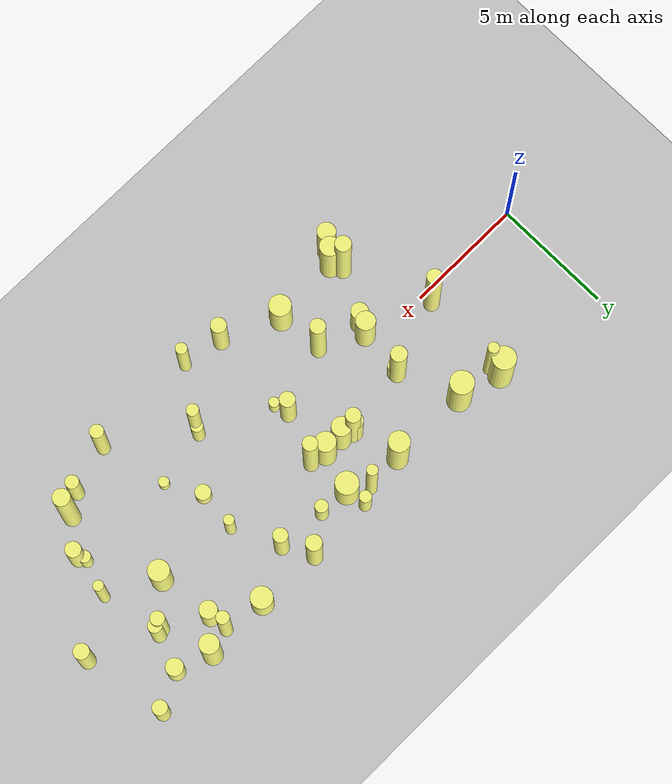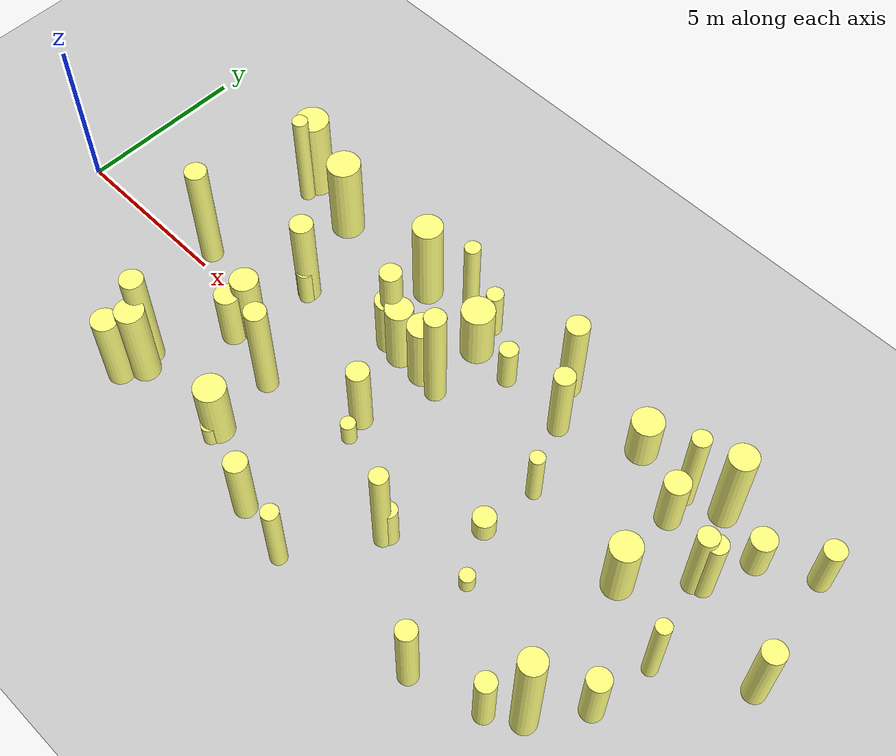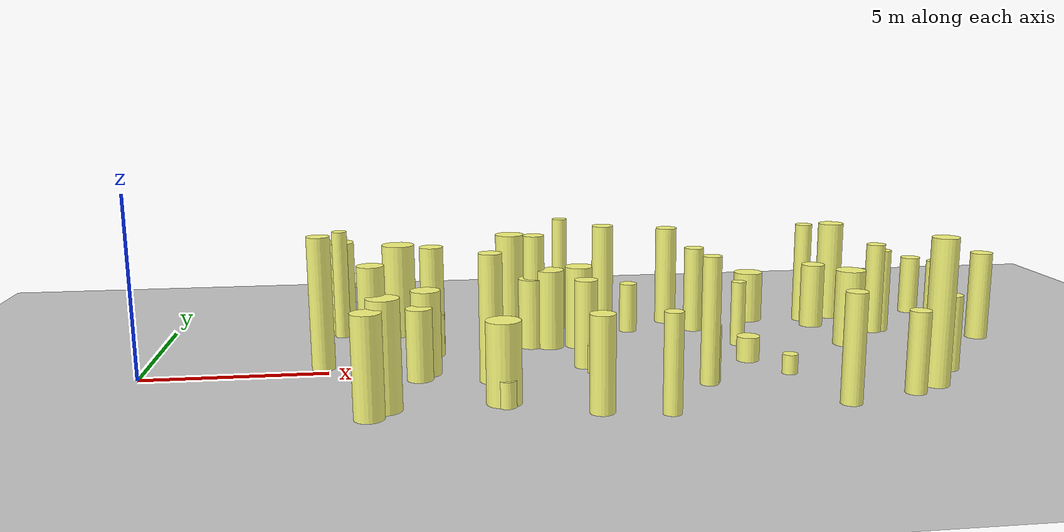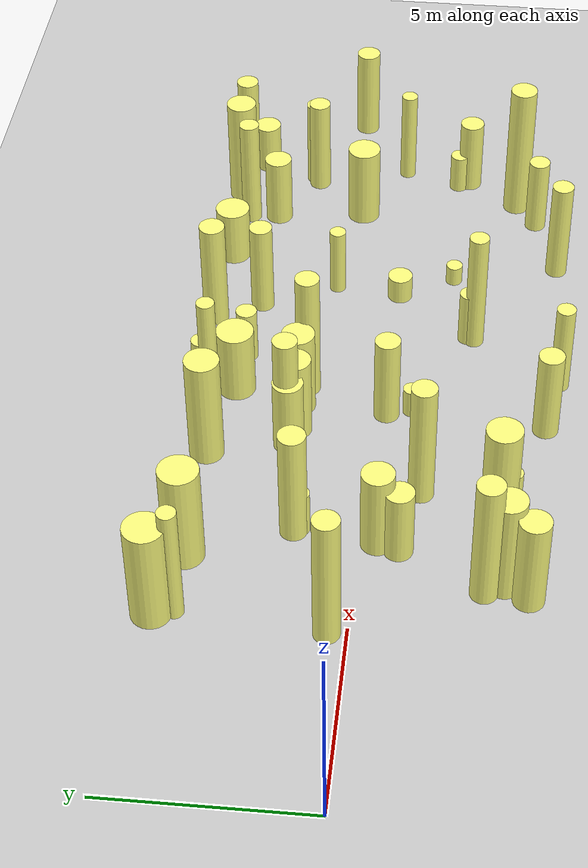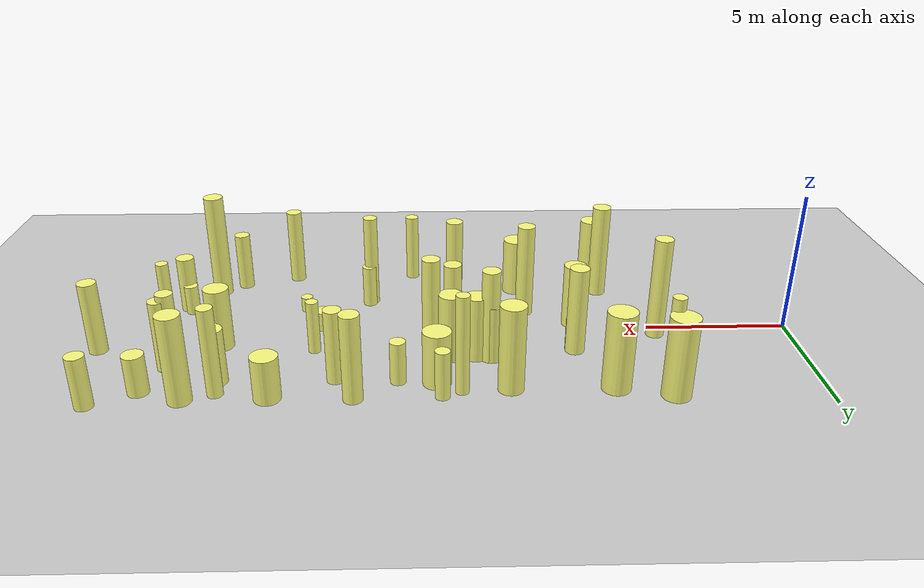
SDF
<sdf version="1.4">
 <world name="default">
  <include><uri>model://ground_plane</uri></include>
  <include><uri>model://sun</uri></include>
  <model name="forest">
   <static>true</static>
   <link name="cylinder1">
    <pose>15.326810881068745 4.44815020159648 1.5245089961670204 0 0 0</pose>
    <visual name="visual">
     <geometry>
      <cylinder><radius>0.32884276525468004</radius><length>3.049017992334041</length></cylinder>
     </geometry>
     <material>
      <ambient>0.6 0.6 0.6 1</ambient>
      <diffuse>1 1 0.5 1</diffuse>
      <specular>0 0 0</specular>
      <emissive>0 0 0 1</emissive>
     </material>
    </visual>
    <collision name="collision">
     <geometry>
      <cylinder><radius>0.32884276525468004</radius><length>3.049017992334041</length></cylinder>
     </geometry>
     <max_contacts>0</max_contacts>
    </collision>
   </link>
   <link name="cylinder12">
    <pose>11.851252865154429 4.0846548338123 1.7340153190742436 0 0 0</pose>
    <visual name="visual">
     <geometry><cylinder><radius>0.225802921579659</radius><length>3.468030638148487</length></cylinder></geometry>
     <material>
      <ambient>0.6 0.6 0.6 1</ambient>
      <diffuse>1 1 0.5 1</diffuse>
      <specular>0 0 0</specular>
      <emissive>0 0 0 1</emissive>
     </material>
    </visual>
    <collision name="collision">
     <geometry><cylinder><radius>0.225802921579659</radius><length>3.468030638148487</length></cylinder></geometry>
     <max_contacts>0</max_contacts>
    </collision>
   </link>
   <link name="cylinder13">
    <pose>9.528915182945973 -3.262580325282216 1.0667924906563833 0 0 0</pose>
    <visual name="visual">
     <geometry>
      <cylinder><radius>0.45164004948687075</radius><length>2.1335849813127665</length></cylinder>
     </geometry>
     <material>
      <ambient>0.6 0.6 0.6 1</ambient>
      <diffuse>1 1 0.5 1</diffuse>
      <specular>0 0 0</specular>
      <emissive>0 0 0 1</emissive>
     </material>
    </visual>
    <collision name="collision">
     <geometry>
      <cylinder><radius>0.45164004948687075</radius><length>2.1335849813127665</length></cylinder>
     </geometry>
     <max_contacts>0</max_contacts>
    </collision>
   </link>
   <link name="cylinder15">
    <pose>20.789859159138125 4.408615186613762 1.540305498436152 0 0 0</pose>
    <visual name="visual">
     <geometry>
      <cylinder><radius>0.3992713100745151</radius><length>3.080610996872304</length></cylinder>
     </geometry>
     <material>
      <ambient>0.6 0.6 0.6 1</ambient>
      <diffuse>1 1 0.5 1</diffuse>
      <specular>0 0 0</specular>
      <emissive>0 0 0 1</emissive>
     </material>
    </visual>
    <collision name="collision">
     <geometry>
      <cylinder><radius>0.3992713100745151</radius><length>3.080610996872304</length></cylinder>
     </geometry>
     <max_contacts>0</max_contacts>
    </collision>
   </link>
   <link name="cylinder17">
    <pose>22.17317977526671 -0.17076089515016335 1.340687301200209 0 0 0</pose>
    <visual name="visual">
     <geometry>
      <cylinder><radius>0.21578449378087355</radius><length>2.681374602400418</length></cylinder>
     </geometry>
     <material>
      <ambient>0.6 0.6 0.6 1</ambient>
      <diffuse>1 1 0.5 1</diffuse>
      <specular>0 0 0</specular>
      <emissive>0 0 0 1</emissive>
     </material>
    </visual>
    <collision name="collision">
     <geometry>
      <cylinder><radius>0.21578449378087355</radius><length>2.681374602400418</length></cylinder>
     </geometry>
     <max_contacts>0</max_contacts>
    </collision>
   </link>
   <link name="cylinder18">
    <pose>10.749598188778428 1.991703804756165 1.025701142250085 0 0 0</pose>
    <visual name="visual">
     <geometry><cylinder><radius>0.3834756503450859</radius><length>2.05140228450017</length></cylinder></geometry>
     <material>
      <ambient>0.6 0.6 0.6 1</ambient>
      <diffuse>1 1 0.5 1</diffuse>
      <specular>0 0 0</specular>
      <emissive>0 0 0 1</emissive>
     </material>
    </visual>
    <collision name="collision">
     <geometry><cylinder><radius>0.3834756503450859</radius><length>2.05140228450017</length></cylinder></geometry>
     <max_contacts>0</max_contacts>
    </collision>
   </link>
   <link name="cylinder22">
    <pose>21.6921501270242 -1.6663580762201633 0.5468895035778689 0 0 0</pose>
    <visual name="visual">
     <geometry>
      <cylinder><radius>0.24838409049166843</radius><length>1.0937790071557378</length></cylinder>
     </geometry>
     <material>
      <ambient>0.6 0.6 0.6 1</ambient>
      <diffuse>1 1 0.5 1</diffuse>
      <specular>0 0 0</specular>
      <emissive>0 0 0 1</emissive>
     </material>
    </visual>
    <collision name="collision">
     <geometry>
      <cylinder><radius>0.24838409049166843</radius><length>1.0937790071557378</length></cylinder>
     </geometry>
     <max_contacts>0</max_contacts>
    </collision>
   </link>
   <link name="cylinder23">
    <pose>20.137798298450257 0.9372512442738916 1.1237016619375413 0 0 0</pose>
    <visual name="visual">
     <geometry>
      <cylinder><radius>0.4350848166733843</radius><length>2.2474033238750826</length></cylinder>
     </geometry>
     <material>
      <ambient>0.6 0.6 0.6 1</ambient>
      <diffuse>1 1 0.5 1</diffuse>
      <specular>0 0 0</specular>
      <emissive>0 0 0 1</emissive>
     </material>
    </visual>
    <collision name="collision">
     <geometry>
      <cylinder><radius>0.4350848166733843</radius><length>2.2474033238750826</length></cylinder>
     </geometry>
     <max_contacts>0</max_contacts>
    </collision>
   </link>
   <link name="cylinder26">
    <pose>19.833739490549426 3.294432998006373 0.9844088126925716 0 0 0</pose>
    <visual name="visual">
     <geometry>
      <cylinder><radius>0.3623249942571851</radius><length>1.9688176253851433</length></cylinder>
     </geometry>
     <material>
      <ambient>0.6 0.6 0.6 1</ambient>
      <diffuse>1 1 0.5 1</diffuse>
      <specular>0 0 0</specular>
      <emissive>0 0 0 1</emissive>
     </material>
    </visual>
    <collision name="collision">
     <geometry>
      <cylinder><radius>0.3623249942571851</radius><length>1.9688176253851433</length></cylinder>
     </geometry>
     <max_contacts>0</max_contacts>
    </collision>
   </link>
   <link name="cylinder28">
    <pose>13.511106060946105 -4.632045625972444 1.276704302045779 0 0 0</pose>
    <visual name="visual">
     <geometry>
      <cylinder><radius>0.24020327871995664</radius><length>2.553408604091558</length></cylinder>
     </geometry>
     <material>
      <ambient>0.6 0.6 0.6 1</ambient>
      <diffuse>1 1 0.5 1</diffuse>
      <specular>0 0 0</specular>
      <emissive>0 0 0 1</emissive>
     </material>
    </visual>
    <collision name="collision">
     <geometry>
      <cylinder><radius>0.24020327871995664</radius><length>2.553408604091558</length></cylinder>
     </geometry>
     <max_contacts>0</max_contacts>
    </collision>
   </link>
   <link name="cylinder29">
    <pose>20.902014358298864 -3.3283581596672986 1.9682573430151837 0 0 0</pose>
    <visual name="visual">
     <geometry>
      <cylinder><radius>0.35390016411605674</radius><length>3.9365146860303675</length></cylinder>
     </geometry>
     <material>
      <ambient>0.6 0.6 0.6 1</ambient>
      <diffuse>1 1 0.5 1</diffuse>
      <specular>0 0 0</specular>
      <emissive>0 0 0 1</emissive>
     </material>
    </visual>
    <collision name="collision">
     <geometry>
      <cylinder><radius>0.35390016411605674</radius><length>3.9365146860303675</length></cylinder>
     </geometry>
     <max_contacts>0</max_contacts>
    </collision>
   </link>
   <link name="cylinder33">
    <pose>10.277843832452142 3.9662285758313267 1.5198597949279122 0 0 0</pose>
    <visual name="visual">
     <geometry>
      <cylinder><radius>0.43222622895694485</radius><length>3.0397195898558245</length></cylinder>
     </geometry>
     <material>
      <ambient>0.6 0.6 0.6 1</ambient>
      <diffuse>1 1 0.5 1</diffuse>
      <specular>0 0 0</specular>
      <emissive>0 0 0 1</emissive>
     </material>
    </visual>
    <collision name="collision">
     <geometry>
      <cylinder><radius>0.43222622895694485</radius><length>3.0397195898558245</length></cylinder>
     </geometry>
     <max_contacts>0</max_contacts>
    </collision>
   </link>
   <link name="cylinder34">
    <pose>6.341370451103096 -2.992066850662254 1.7665536685939367 0 0 0</pose>
    <visual name="visual">
     <geometry>
      <cylinder><radius>0.3342498121226667</radius><length>3.5331073371878734</length></cylinder>
     </geometry>
     <material>
      <ambient>0.6 0.6 0.6 1</ambient>
      <diffuse>1 1 0.5 1</diffuse>
      <specular>0 0 0</specular>
      <emissive>0 0 0 1</emissive>
     </material>
    </visual>
    <collision name="collision">
     <geometry>
      <cylinder><radius>0.3342498121226667</radius><length>3.5331073371878734</length></cylinder>
     </geometry>
     <max_contacts>0</max_contacts>
    </collision>
   </link>
   <link name="cylinder35">
    <pose>12.031115373614448 -0.32621599096671083 1.2311138491603326 0 0 0</pose>
    <visual name="visual">
     <geometry>
      <cylinder><radius>0.32083398046830275</radius><length>2.4622276983206652</length></cylinder>
     </geometry>
     <material>
      <ambient>0.6 0.6 0.6 1</ambient>
      <diffuse>1 1 0.5 1</diffuse>
      <specular>0 0 0</specular>
      <emissive>0 0 0 1</emissive>
     </material>
    </visual>
    <collision name="collision">
     <geometry>
      <cylinder><radius>0.32083398046830275</radius><length>2.4622276983206652</length></cylinder>
     </geometry>
     <max_contacts>0</max_contacts>
    </collision>
   </link>
   <link name="cylinder37">
    <pose>23.703867928985538 4.6543589916086265 0.9164790352000004 0 0 0</pose>
    <visual name="visual">
     <geometry>
      <cylinder><radius>0.3063984760092656</radius><length>1.8329580704000008</length></cylinder>
     </geometry>
     <material>
      <ambient>0.6 0.6 0.6 1</ambient>
      <diffuse>1 1 0.5 1</diffuse>
      <specular>0 0 0</specular>
      <emissive>0 0 0 1</emissive>
     </material>
    </visual>
    <collision name="collision">
     <geometry>
      <cylinder><radius>0.3063984760092656</radius><length>1.8329580704000008</length></cylinder>
     </geometry>
     <max_contacts>0</max_contacts>
    </collision>
   </link>
   <link name="cylinder39">
    <pose>19.744685019783738 4.060041109546567 1.5626195724777552 0 0 0</pose>
    <visual name="visual">
     <geometry>
      <cylinder><radius>0.2643367503565982</radius><length>3.1252391449555104</length></cylinder>
     </geometry>
     <material>
      <ambient>0.6 0.6 0.6 1</ambient>
      <diffuse>1 1 0.5 1</diffuse>
      <specular>0 0 0</specular>
      <emissive>0 0 0 1</emissive>
     </material>
    </visual>
    <collision name="collision">
     <geometry>
      <cylinder><radius>0.2643367503565982</radius><length>3.1252391449555104</length></cylinder>
     </geometry>
     <max_contacts>0</max_contacts>
    </collision>
   </link>
   <link name="cylinder40">
    <pose>12.206433177939552 -0.9399574047651802 0.3850861844117669 0 0 0</pose>
    <visual name="visual">
     <geometry>
      <cylinder><radius>0.21621220133252175</radius><length>0.7701723688235338</length></cylinder>
     </geometry>
     <material>
      <ambient>0.6 0.6 0.6 1</ambient>
      <diffuse>1 1 0.5 1</diffuse>
      <specular>0 0 0</specular>
      <emissive>0 0 0 1</emissive>
     </material>
    </visual>
    <collision name="collision">
     <geometry>
      <cylinder><radius>0.21621220133252175</radius><length>0.7701723688235338</length></cylinder>
     </geometry>
     <max_contacts>0</max_contacts>
    </collision>
   </link>
   <link name="cylinder44">
    <pose>16.854442063781235 1.3594188490321084 0.9549184677734529 0 0 0</pose>
    <visual name="visual">
     <geometry>
      <cylinder><radius>0.21280323200237297</radius><length>1.9098369355469058</length></cylinder>
     </geometry>
     <material>
      <ambient>0.6 0.6 0.6 1</ambient>
      <diffuse>1 1 0.5 1</diffuse>
      <specular>0 0 0</specular>
      <emissive>0 0 0 1</emissive>
     </material>
    </visual>
    <collision name="collision">
     <geometry>
      <cylinder><radius>0.21280323200237297</radius><length>1.9098369355469058</length></cylinder>
     </geometry>
     <max_contacts>0</max_contacts>
    </collision>
   </link>
   <link name="cylinder49">
    <pose>7.855266788333395 1.547053276769228 1.5716414693703582 0 0 0</pose>
    <visual name="visual">
     <geometry>
      <cylinder><radius>0.33487286682670503</radius><length>3.1432829387407164</length></cylinder>
     </geometry>
     <material>
      <ambient>0.6 0.6 0.6 1</ambient>
      <diffuse>1 1 0.5 1</diffuse>
      <specular>0 0 0</specular>
      <emissive>0 0 0 1</emissive>
     </material>
    </visual>
    <collision name="collision">
     <geometry>
      <cylinder><radius>0.33487286682670503</radius><length>3.1432829387407164</length></cylinder>
     </geometry>
     <max_contacts>0</max_contacts>
    </collision>
   </link>
   <link name="cylinder50">
    <pose>15.021751668879233 -2.3837789731522863 1.715162036652757 0 0 0</pose>
    <visual name="visual">
     <geometry>
      <cylinder><radius>0.2504492714636248</radius><length>3.430324073305514</length></cylinder>
     </geometry>
     <material>
      <ambient>0.6 0.6 0.6 1</ambient>
      <diffuse>1 1 0.5 1</diffuse>
      <specular>0 0 0</specular>
      <emissive>0 0 0 1</emissive>
     </material>
    </visual>
    <collision name="collision">
     <geometry>
      <cylinder><radius>0.2504492714636248</radius><length>3.430324073305514</length></cylinder>
     </geometry>
     <max_contacts>0</max_contacts>
    </collision>
   </link>
   <link name="cylinder57">
    <pose>21.71759715725363 2.4053715850045485 1.2661016996792969 0 0 0</pose>
    <visual name="visual">
     <geometry>
      <cylinder><radius>0.2843217232163094</radius><length>2.5322033993585937</length></cylinder>
     </geometry>
     <material>
      <ambient>0.6 0.6 0.6 1</ambient>
      <diffuse>1 1 0.5 1</diffuse>
      <specular>0 0 0</specular>
      <emissive>0 0 0 1</emissive>
     </material>
    </visual>
    <collision name="collision">
     <geometry>
      <cylinder><radius>0.2843217232163094</radius><length>2.5322033993585937</length></cylinder>
     </geometry>
     <max_contacts>0</max_contacts>
    </collision>
   </link>
   <link name="cylinder60">
    <pose>6.87688431486324 3.9961293168377203 1.3965673190072463 0 0 0</pose>
    <visual name="visual">
     <geometry>
      <cylinder><radius>0.4889072010127708</radius><length>2.7931346380144926</length></cylinder>
     </geometry>
     <material>
      <ambient>0.6 0.6 0.6 1</ambient>
      <diffuse>1 1 0.5 1</diffuse>
      <specular>0 0 0</specular>
      <emissive>0 0 0 1</emissive>
     </material>
    </visual>
    <collision name="collision">
     <geometry>
      <cylinder><radius>0.4889072010127708</radius><length>2.7931346380144926</length></cylinder>
     </geometry>
     <max_contacts>0</max_contacts>
    </collision>
   </link>
   <link name="cylinder69">
    <pose>22.22731054762442 3.8801251720302865 0.7029839347037367 0 0 0</pose>
    <visual name="visual">
     <geometry>
      <cylinder><radius>0.3564781107148933</radius><length>1.4059678694074733</length></cylinder>
     </geometry>
     <material>
      <ambient>0.6 0.6 0.6 1</ambient>
      <diffuse>1 1 0.5 1</diffuse>
      <specular>0 0 0</specular>
      <emissive>0 0 0 1</emissive>
     </material>
    </visual>
    <collision name="collision">
     <geometry>
      <cylinder><radius>0.3564781107148933</radius><length>1.4059678694074733</length></cylinder>
     </geometry>
     <max_contacts>0</max_contacts>
    </collision>
   </link>
   <link name="cylinder72">
    <pose>21.864053045048287 -1.970433889716249 1.043853457473311 0 0 0</pose>
    <visual name="visual">
     <geometry>
      <cylinder><radius>0.32306382522986904</radius><length>2.087706914946622</length></cylinder>
     </geometry>
     <material>
      <ambient>0.6 0.6 0.6 1</ambient>
      <diffuse>1 1 0.5 1</diffuse>
      <specular>0 0 0</specular>
      <emissive>0 0 0 1</emissive>
     </material>
    </visual>
    <collision name="collision">
     <geometry>
      <cylinder><radius>0.32306382522986904</radius><length>2.087706914946622</length></cylinder>
     </geometry>
     <max_contacts>0</max_contacts>
    </collision>
   </link>
   <link name="cylinder74">
    <pose>6.616161471937666 -3.440115665835284 1.4123613409527105 0 0 0</pose>
    <visual name="visual">
     <geometry><cylinder><radius>0.413312810187925</radius><length>2.824722681905421</length></cylinder></geometry>
     <material>
      <ambient>0.6 0.6 0.6 1</ambient>
      <diffuse>1 1 0.5 1</diffuse>
      <specular>0 0 0</specular>
      <emissive>0 0 0 1</emissive>
     </material>
    </visual>
    <collision name="collision">
     <geometry><cylinder><radius>0.413312810187925</radius><length>2.824722681905421</length></cylinder></geometry>
     <max_contacts>0</max_contacts>
    </collision>
   </link>
   <link name="cylinder75">
    <pose>12.484887751551497 4.376367922632166 0.8451516286696621 0 0 0</pose>
    <visual name="visual">
     <geometry>
      <cylinder><radius>0.24817926270456606</radius><length>1.6903032573393242</length></cylinder>
     </geometry>
     <material>
      <ambient>0.6 0.6 0.6 1</ambient>
      <diffuse>1 1 0.5 1</diffuse>
      <specular>0 0 0</specular>
      <emissive>0 0 0 1</emissive>
     </material>
    </visual>
    <collision name="collision">
     <geometry>
      <cylinder><radius>0.24817926270456606</radius><length>1.6903032573393242</length></cylinder>
     </geometry>
     <max_contacts>0</max_contacts>
    </collision>
   </link>
   <link name="cylinder76">
    <pose>7.9376775046424015 1.4064629292299227 0.6037473666144823 0 0 0</pose>
    <visual name="visual">
     <geometry>
      <cylinder><radius>0.24414251648930355</radius><length>1.2074947332289645</length></cylinder>
     </geometry>
     <material>
      <ambient>0.6 0.6 0.6 1</ambient>
      <diffuse>1 1 0.5 1</diffuse>
      <specular>0 0 0</specular>
      <emissive>0 0 0 1</emissive>
     </material>
    </visual>
    <collision name="collision">
     <geometry>
      <cylinder><radius>0.24414251648930355</radius><length>1.2074947332289645</length></cylinder>
     </geometry>
     <max_contacts>0</max_contacts>
    </collision>
   </link>
   <link name="cylinder78">
    <pose>17.44077475025903 -1.7452249812949128 0.2711203886942799 0 0 0</pose>
    <visual name="visual">
     <geometry>
      <cylinder><radius>0.21524801106096364</radius><length>0.5422407773885598</length></cylinder>
     </geometry>
     <material>
      <ambient>0.6 0.6 0.6 1</ambient>
      <diffuse>1 1 0.5 1</diffuse>
      <specular>0 0 0</specular>
      <emissive>0 0 0 1</emissive>
     </material>
    </visual>
    <collision name="collision">
     <geometry>
      <cylinder><radius>0.21524801106096364</radius><length>0.5422407773885598</length></cylinder>
     </geometry>
     <max_contacts>0</max_contacts>
    </collision>
   </link>
   <link name="cylinder79">
    <pose>20.089767812252624 -3.883326536563966 1.0858946897741049 0 0 0</pose>
    <visual name="visual">
     <geometry>
      <cylinder><radius>0.2800908886314827</radius><length>2.1717893795482097</length></cylinder>
     </geometry>
     <material>
      <ambient>0.6 0.6 0.6 1</ambient>
      <diffuse>1 1 0.5 1</diffuse>
      <specular>0 0 0</specular>
      <emissive>0 0 0 1</emissive>
     </material>
    </visual>
    <collision name="collision">
     <geometry>
      <cylinder><radius>0.2800908886314827</radius><length>2.1717893795482097</length></cylinder>
     </geometry>
     <max_contacts>0</max_contacts>
    </collision>
   </link>
   <link name="cylinder83">
    <pose>11.296229931768202 1.873925643423032 1.158652142994216 0 0 0</pose>
    <visual name="visual">
     <geometry>
      <cylinder><radius>0.3995934983911301</radius><length>2.317304285988432</length></cylinder>
     </geometry>
     <material>
      <ambient>0.6 0.6 0.6 1</ambient>
      <diffuse>1 1 0.5 1</diffuse>
      <specular>0 0 0</specular>
      <emissive>0 0 0 1</emissive>
     </material>
    </visual>
    <collision name="collision">
     <geometry>
      <cylinder><radius>0.3995934983911301</radius><length>2.317304285988432</length></cylinder>
     </geometry>
     <max_contacts>0</max_contacts>
    </collision>
   </link>
   <link name="cylinder84">
    <pose>12.815046712509783 1.7231522692966328 1.8056547201671247 0 0 0</pose>
    <visual name="visual">
     <geometry>
      <cylinder><radius>0.30645628035412736</radius><length>3.6113094403342494</length></cylinder>
     </geometry>
     <material>
      <ambient>0.6 0.6 0.6 1</ambient>
      <diffuse>1 1 0.5 1</diffuse>
      <specular>0 0 0</specular>
      <emissive>0 0 0 1</emissive>
     </material>
    </visual>
    <collision name="collision">
     <geometry>
      <cylinder><radius>0.30645628035412736</radius><length>3.6113094403342494</length></cylinder>
     </geometry>
     <max_contacts>0</max_contacts>
    </collision>
   </link>
   <link name="cylinder87">
    <pose>15.102635872629818 -2.2178330753580333 0.7686029545482715 0 0 0</pose>
    <visual name="visual">
     <geometry>
      <cylinder><radius>0.25255561794036935</radius><length>1.537205909096543</length></cylinder>
     </geometry>
     <material>
      <ambient>0.6 0.6 0.6 1</ambient>
      <diffuse>1 1 0.5 1</diffuse>
      <specular>0 0 0</specular>
      <emissive>0 0 0 1</emissive>
     </material>
    </visual>
    <collision name="collision">
     <geometry>
      <cylinder><radius>0.25255561794036935</radius><length>1.537205909096543</length></cylinder>
     </geometry>
     <max_contacts>0</max_contacts>
    </collision>
   </link>
   <link name="cylinder90">
    <pose>10.831995567378463 2.0456103410385182 1.6604579347814248 0 0 0</pose>
    <visual name="visual">
     <geometry>
      <cylinder><radius>0.3096879061605488</radius><length>3.3209158695628496</length></cylinder>
     </geometry>
     <material>
      <ambient>0.6 0.6 0.6 1</ambient>
      <diffuse>1 1 0.5 1</diffuse>
      <specular>0 0 0</specular>
      <emissive>0 0 0 1</emissive>
     </material>
    </visual>
    <collision name="collision">
     <geometry>
      <cylinder><radius>0.3096879061605488</radius><length>3.3209158695628496</length></cylinder>
     </geometry>
     <max_contacts>0</max_contacts>
    </collision>
   </link>
   <link name="cylinder93">
    <pose>5.138673584219482 3.952946761869157 1.623857615671049 0 0 0</pose>
    <visual name="visual">
     <geometry>
      <cylinder><radius>0.22739660162498213</radius><length>3.247715231342098</length></cylinder>
     </geometry>
     <material>
      <ambient>0.6 0.6 0.6 1</ambient>
      <diffuse>1 1 0.5 1</diffuse>
      <specular>0 0 0</specular>
      <emissive>0 0 0 1</emissive>
     </material>
    </visual>
    <collision name="collision">
     <geometry>
      <cylinder><radius>0.22739660162498213</radius><length>3.247715231342098</length></cylinder>
     </geometry>
     <max_contacts>0</max_contacts>
    </collision>
   </link>
   <link name="cylinder95">
    <pose>16.67364061410101 -0.33436534148882036 0.3506905457500299 0 0 0</pose>
    <visual name="visual">
     <geometry>
      <cylinder><radius>0.32293235437771856</radius><length>0.7013810915000598</length></cylinder>
     </geometry>
     <material>
      <ambient>0.6 0.6 0.6 1</ambient>
      <diffuse>1 1 0.5 1</diffuse>
      <specular>0 0 0</specular>
      <emissive>0 0 0 1</emissive>
     </material>
    </visual>
    <collision name="collision">
     <geometry>
      <cylinder><radius>0.32293235437771856</radius><length>0.7013810915000598</length></cylinder>
     </geometry>
     <max_contacts>0</max_contacts>
    </collision>
   </link>
   <link name="cylinder101">
    <pose>7.462683697488494 -0.9540845488543539 0.9782737354711712 0 0 0</pose>
    <visual name="visual">
     <geometry>
      <cylinder><radius>0.35454497112531536</radius><length>1.9565474709423425</length></cylinder>
     </geometry>
     <material>
      <ambient>0.6 0.6 0.6 1</ambient>
      <diffuse>1 1 0.5 1</diffuse>
      <specular>0 0 0</specular>
      <emissive>0 0 0 1</emissive>
     </material>
    </visual>
    <collision name="collision">
     <geometry>
      <cylinder><radius>0.35454497112531536</radius><length>1.9565474709423425</length></cylinder>
     </geometry>
     <max_contacts>0</max_contacts>
    </collision>
   </link>
   <link name="cylinder105">
    <pose>5.0445417949749825 4.468637816360792 1.4156065025842877 0 0 0</pose>
    <visual name="visual">
     <geometry>
      <cylinder><radius>0.48531320867463174</radius><length>2.8312130051685753</length></cylinder>
     </geometry>
     <material>
      <ambient>0.6 0.6 0.6 1</ambient>
      <diffuse>1 1 0.5 1</diffuse>
      <specular>0 0 0</specular>
      <emissive>0 0 0 1</emissive>
     </material>
    </visual>
    <collision name="collision">
     <geometry>
      <cylinder><radius>0.48531320867463174</radius><length>2.8312130051685753</length></cylinder>
     </geometry>
     <max_contacts>0</max_contacts>
    </collision>
   </link>
   <link name="cylinder106">
    <pose>9.344097140250675 -1.358716637630033 1.7328316405944084 0 0 0</pose>
    <visual name="visual">
     <geometry>
      <cylinder><radius>0.31498146131679716</radius><length>3.465663281188817</length></cylinder>
     </geometry>
     <material>
      <ambient>0.6 0.6 0.6 1</ambient>
      <diffuse>1 1 0.5 1</diffuse>
      <specular>0 0 0</specular>
      <emissive>0 0 0 1</emissive>
     </material>
    </visual>
    <collision name="collision">
     <geometry>
      <cylinder><radius>0.31498146131679716</radius><length>3.465663281188817</length></cylinder>
     </geometry>
     <max_contacts>0</max_contacts>
    </collision>
   </link>
   <link name="cylinder108">
    <pose>21.47016667135854 2.301685609760309 1.3719520262816884 0 0 0</pose>
    <visual name="visual">
     <geometry><cylinder><radius>0.288037864271264</radius><length>2.743904052563377</length></cylinder></geometry>
     <material>
      <ambient>0.6 0.6 0.6 1</ambient>
      <diffuse>1 1 0.5 1</diffuse>
      <specular>0 0 0</specular>
      <emissive>0 0 0 1</emissive>
     </material>
    </visual>
    <collision name="collision">
     <geometry><cylinder><radius>0.288037864271264</radius><length>2.743904052563377</length></cylinder></geometry>
     <max_contacts>0</max_contacts>
    </collision>
   </link>
   <link name="cylinder109">
    <pose>18.1143440986174 -4.488617682019224 1.4297180723451535 0 0 0</pose>
    <visual name="visual">
     <geometry>
      <cylinder><radius>0.2817373620864909</radius><length>2.859436144690307</length></cylinder>
     </geometry>
     <material>
      <ambient>0.6 0.6 0.6 1</ambient>
      <diffuse>1 1 0.5 1</diffuse>
      <specular>0 0 0</specular>
      <emissive>0 0 0 1</emissive>
     </material>
    </visual>
    <collision name="collision">
     <geometry>
      <cylinder><radius>0.2817373620864909</radius><length>2.859436144690307</length></cylinder>
     </geometry>
     <max_contacts>0</max_contacts>
    </collision>
   </link>
   <link name="cylinder110">
    <pose>24.34423705334261 1.1698966433809694 1.306230683332007 0 0 0</pose>
    <visual name="visual">
     <geometry>
      <cylinder><radius>0.3220979684986483</radius><length>2.612461366664014</length></cylinder>
     </geometry>
     <material>
      <ambient>0.6 0.6 0.6 1</ambient>
      <diffuse>1 1 0.5 1</diffuse>
      <specular>0 0 0</specular>
      <emissive>0 0 0 1</emissive>
     </material>
    </visual>
    <collision name="collision">
     <geometry>
      <cylinder><radius>0.3220979684986483</radius><length>2.612461366664014</length></cylinder>
     </geometry>
     <max_contacts>0</max_contacts>
    </collision>
   </link>
   <link name="cylinder120">
    <pose>7.649996159770993 -0.44046783738401096 1.1621722110538117 0 0 0</pose>
    <visual name="visual">
     <geometry>
      <cylinder><radius>0.4013985166980715</radius><length>2.3243444221076235</length></cylinder>
     </geometry>
     <material>
      <ambient>0.6 0.6 0.6 1</ambient>
      <diffuse>1 1 0.5 1</diffuse>
      <specular>0 0 0</specular>
      <emissive>0 0 0 1</emissive>
     </material>
    </visual>
    <collision name="collision">
     <geometry>
      <cylinder><radius>0.4013985166980715</radius><length>2.3243444221076235</length></cylinder>
     </geometry>
     <max_contacts>0</max_contacts>
    </collision>
   </link>
   <link name="cylinder123">
    <pose>9.588730243866486 -3.5651531114276 0.34401654634032514 0 0 0</pose>
    <visual name="visual">
     <geometry>
      <cylinder><radius>0.23190817671304398</radius><length>0.6880330926806503</length></cylinder>
     </geometry>
     <material>
      <ambient>0.6 0.6 0.6 1</ambient>
      <diffuse>1 1 0.5 1</diffuse>
      <specular>0 0 0</specular>
      <emissive>0 0 0 1</emissive>
     </material>
    </visual>
    <collision name="collision">
     <geometry>
      <cylinder><radius>0.23190817671304398</radius><length>0.6880330926806503</length></cylinder>
     </geometry>
     <max_contacts>0</max_contacts>
    </collision>
   </link>
   <link name="cylinder126">
    <pose>13.918250116096573 3.4231499010629136 0.7524705550926292 0 0 0</pose>
    <visual name="visual">
     <geometry>
      <cylinder><radius>0.26883757232143707</radius><length>1.5049411101852583</length></cylinder>
     </geometry>
     <material>
      <ambient>0.6 0.6 0.6 1</ambient>
      <diffuse>1 1 0.5 1</diffuse>
      <specular>0 0 0</specular>
      <emissive>0 0 0 1</emissive>
     </material>
    </visual>
    <collision name="collision">
     <geometry>
      <cylinder><radius>0.26883757232143707</radius><length>1.5049411101852583</length></cylinder>
     </geometry>
     <max_contacts>0</max_contacts>
    </collision>
   </link>
   <link name="cylinder128">
    <pose>6.233913361715164 -4.0130267831025765 1.3064011334516474 0 0 0</pose>
    <visual name="visual">
     <geometry>
      <cylinder><radius>0.3799192224625905</radius><length>2.612802266903295</length></cylinder>
     </geometry>
     <material>
      <ambient>0.6 0.6 0.6 1</ambient>
      <diffuse>1 1 0.5 1</diffuse>
      <specular>0 0 0</specular>
      <emissive>0 0 0 1</emissive>
     </material>
    </visual>
    <collision name="collision">
     <geometry>
      <cylinder><radius>0.3799192224625905</radius><length>2.612802266903295</length></cylinder>
     </geometry>
     <max_contacts>0</max_contacts>
    </collision>
   </link>
   <link name="cylinder130">
    <pose>18.04230649326059 4.335377953288329 0.7802950976283631 0 0 0</pose>
    <visual name="visual">
     <geometry>
      <cylinder><radius>0.4509185029630291</radius><length>1.5605901952567263</length></cylinder>
     </geometry>
     <material>
      <ambient>0.6 0.6 0.6 1</ambient>
      <diffuse>1 1 0.5 1</diffuse>
      <specular>0 0 0</specular>
      <emissive>0 0 0 1</emissive>
     </material>
    </visual>
    <collision name="collision">
     <geometry>
      <cylinder><radius>0.4509185029630291</radius><length>1.5605901952567263</length></cylinder>
     </geometry>
     <max_contacts>0</max_contacts>
    </collision>
   </link>
   <link name="cylinder132">
    <pose>4.824849640319989 0.46162127162889366 1.8495047907335052 0 0 0</pose>
    <visual name="visual">
     <geometry>
      <cylinder><radius>0.3197386573370562</radius><length>3.6990095814670103</length></cylinder>
     </geometry>
     <material>
      <ambient>0.6 0.6 0.6 1</ambient>
      <diffuse>1 1 0.5 1</diffuse>
      <specular>0 0 0</specular>
      <emissive>0 0 0 1</emissive>
     </material>
    </visual>
    <collision name="collision">
     <geometry>
      <cylinder><radius>0.3197386573370562</radius><length>3.6990095814670103</length></cylinder>
     </geometry>
     <max_contacts>0</max_contacts>
    </collision>
   </link>
   <link name="cylinder135">
    <pose>15.965725098298847 3.285500836900667 1.3005790350332018 0 0 0</pose>
    <visual name="visual">
     <geometry>
      <cylinder><radius>0.29975276205069595</radius><length>2.6011580700664036</length></cylinder>
     </geometry>
     <material>
      <ambient>0.6 0.6 0.6 1</ambient>
      <diffuse>1 1 0.5 1</diffuse>
      <specular>0 0 0</specular>
      <emissive>0 0 0 1</emissive>
     </material>
    </visual>
    <collision name="collision">
     <geometry>
      <cylinder><radius>0.29975276205069595</radius><length>2.6011580700664036</length></cylinder>
     </geometry>
     <max_contacts>0</max_contacts>
    </collision>
   </link>
   <link name="cylinder141">
    <pose>12.651177674907899 3.53510289738961 0.9604856709934697 0 0 0</pose>
    <visual name="visual">
     <geometry>
      <cylinder><radius>0.47731733624098005</radius><length>1.9209713419869394</length></cylinder>
     </geometry>
     <material>
      <ambient>0.6 0.6 0.6 1</ambient>
      <diffuse>1 1 0.5 1</diffuse>
      <specular>0 0 0</specular>
      <emissive>0 0 0 1</emissive>
     </material>
    </visual>
    <collision name="collision">
     <geometry>
      <cylinder><radius>0.47731733624098005</radius><length>1.9209713419869394</length></cylinder>
     </geometry>
     <max_contacts>0</max_contacts>
    </collision>
   </link>
   <link name="cylinder143">
    <pose>11.839994684840477 -4.304252478980805 1.2379084777048814 0 0 0</pose>
    <visual name="visual">
     <geometry>
      <cylinder><radius>0.3230159928081527</radius><length>2.475816955409763</length></cylinder>
     </geometry>
     <material>
      <ambient>0.6 0.6 0.6 1</ambient>
      <diffuse>1 1 0.5 1</diffuse>
      <specular>0 0 0</specular>
      <emissive>0 0 0 1</emissive>
     </material>
    </visual>
    <collision name="collision">
     <geometry>
      <cylinder><radius>0.3230159928081527</radius><length>2.475816955409763</length></cylinder>
     </geometry>
     <max_contacts>0</max_contacts>
    </collision>
   </link>
   <link name="cylinder148">
    <pose>12.158369290143952 1.8883720697849116 1.1984013257815 0 0 0</pose>
    <visual name="visual">
     <geometry><cylinder><radius>0.41670919974107895</radius><length>2.396802651563</length></cylinder></geometry>
     <material>
      <ambient>0.6 0.6 0.6 1</ambient>
      <diffuse>1 1 0.5 1</diffuse>
      <specular>0 0 0</specular>
      <emissive>0 0 0 1</emissive>
     </material>
    </visual>
    <collision name="collision">
     <geometry><cylinder><radius>0.41670919974107895</radius><length>2.396802651563</length></cylinder></geometry>
     <max_contacts>0</max_contacts>
    </collision>
   </link>
  </model>
 </world>
</sdf>
